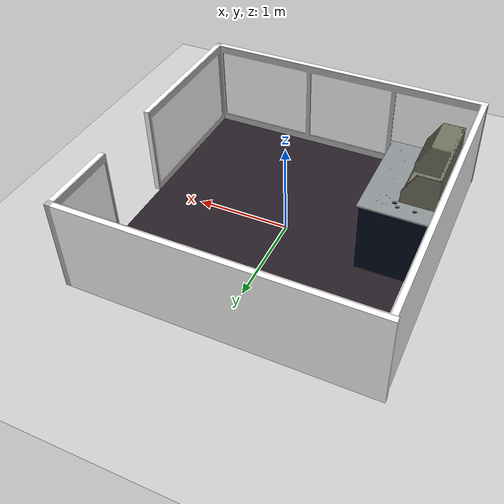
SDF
<?xml version="1.0" ?>
<sdf version="1.4">
  <world name="default">

    <include>
      <uri>model://ground_plane</uri>
      <pose>0 0 -0.005 0 0 0</pose>
    </include>

    <include>
      <uri>model://fetchit_arena</uri>
      <name>fetchit_arena1</name>
      <pose>0 0 0 0 0 0</pose>
    </include>
    <include>
	<uri>model://shunk_machine</uri>
	<name>schunk_machine</name>
	<pose>-1.16773 -0.3 0 0 0 0</pose>
    </include>
    <light name='user_point_light_0' type='point'>
      <pose frame=''>1.0 1.0 3.5 0 0 0</pose>
      <diffuse>0.7 0.7 0.7 1</diffuse>
      <specular>0.1 0.1 0.1 1</specular>
      <attenuation>
        <range>10</range>
        <constant>0.5</constant>
        <linear>0.01</linear>
        <quadratic>0.001</quadratic>
      </attenuation>
      <cast_shadows>0</cast_shadows>
      <direction>0 0 -1</direction>
    </light>

    <light name='user_point_light_1' type='point'>
      <pose frame=''>-1.0 1.0 3.5 0 0 0</pose>
      <diffuse>0.7 0.7 0.7 1</diffuse>
      <specular>0.1 0.1 0.1 1</specular>
      <attenuation>
        <range>10</range>
        <constant>0.5</constant>
        <linear>0.01</linear>
        <quadratic>0.001</quadratic>
      </attenuation>
      <cast_shadows>0</cast_shadows>
      <direction>0 0 -1</direction>
    </light>

    <light name='user_point_light_2' type='point'>
      <pose frame=''>-1.0 -1.0 3.5 0 0 0</pose>
      <diffuse>0.7 0.7 0.7 1</diffuse>
      <specular>0.1 0.1 0.1 1</specular>
      <attenuation>
        <range>10</range>
        <constant>0.5</constant>
        <linear>0.01</linear>
        <quadratic>0.001</quadratic>
      </attenuation>
      <cast_shadows>0</cast_shadows>
      <direction>0 0 -1</direction>
    </light>

    <light name='user_point_light_3' type='point'>
      <pose frame=''>1.0 -1.0 3.5 0 0 0</pose>
      <diffuse>0.7 0.7 0.7 1</diffuse>
      <specular>0.1 0.1 0.1 1</specular>
      <attenuation>
        <range>10</range>
        <constant>0.5</constant>
        <linear>0.01</linear>
        <quadratic>0.001</quadratic>
      </attenuation>
      <cast_shadows>0</cast_shadows>
      <direction>0 0 -1</direction>
    </light>

  </world>
</sdf>

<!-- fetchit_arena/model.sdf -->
<sdf version='1.4'>
  <model name="fetchit_simple_env">
      <static>1</static>
      <link name='link'>
        <visual name='visual'>
          <geometry>
            <mesh>
              <uri>model://fetchit_arena/meshes/fetchit_arena1.dae</uri>
              <scale>1 1 1</scale>
            </mesh>
          </geometry>
        </visual>
        <collision name='collision'>
          <geometry>
            <mesh>
              <uri>model://fetchit_arena/meshes/fetchit_arena1.dae</uri>
              <scale>1 1 1</scale>
            </mesh>
          </geometry>
          <surface>
            <friction>
              <ode>
                <mu>30.0</mu>
                <mu2>30.0</mu2>
              </ode>
            </friction>
            <contact>
              <ode>
                <soft_cfm>0</soft_cfm>
    	          <soft_erp>0.2</soft_erp>
    	          <kp>1e+13</kp>
    	          <kd>1</kd>
    	          <max_vel>0.01</max_vel>
    	          <min_depth>0</min_depth>
              </ode>
            </contact>
          </surface>
        </collision>
        <velocity_decay>
          <linear>0.000000</linear>
          <angular>0.000000</angular>
        </velocity_decay>
        <self_collide>0</self_collide>
        <kinematic>0</kinematic>
        <gravity>1</gravity>
      </link>
  </model>
</sdf>

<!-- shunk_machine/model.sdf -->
<sdf version='1.4'>
  <model name="shunk_machine">
      <static>1</static>
      <link name='link'>
        <inertial>
          <mass>0.0676998</mass>
          <inertia>
            <ixx>6.36046210549e-06</ixx>
            <ixy>0.000000</ixy>
            <ixz>0.000000</ixz>
            <iyy>7.70974202419e-05</iyy>
            <iyz>0.000000</iyz>
            <izz>7.84820892159e-05</izz>
          </inertia>
        </inertial>
        <collision name='collision'>
          <geometry>
            <mesh>
              <uri>model://shunk_machine/meshes/shunk_machine_nodoor_nolathe_collisions_simple.stl</uri>
              <scale>1 1 1</scale>
            </mesh>
          </geometry>
          <surface>
            <friction>
              <ode>
                <mu>30.0</mu>
                <mu2>30.0</mu2>
              </ode>
            </friction>
            <contact>
              <ode>
                <soft_cfm>0</soft_cfm>
    	          <soft_erp>0.2</soft_erp>
    	          <kp>1e+13</kp>
    	          <kd>1</kd>
    	          <max_vel>0.01</max_vel>
    	          <min_depth>0</min_depth>
              </ode>
            </contact>
          </surface>
        </collision>
        <visual name='visual'>
          <geometry>
            <mesh>
              <uri>model://shunk_machine/meshes/shunk_machine_nodoor_nolathe_v2.dae</uri>
              <scale>1 1 1</scale>
            </mesh>
          </geometry>
        </visual>
        <velocity_decay>
          <linear>0.000000</linear>
          <angular>0.000000</angular>
        </velocity_decay>
        <self_collide>0</self_collide>
        <kinematic>0</kinematic>
        <gravity>1</gravity>
      </link>
  </model>
</sdf>
